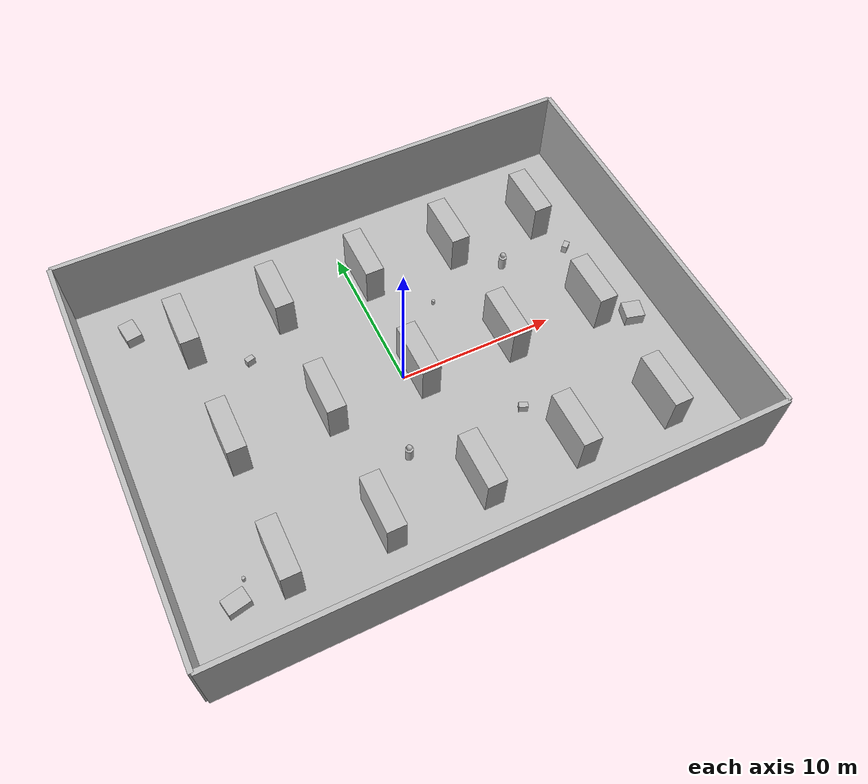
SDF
<sdf version='1.10'>
  <world name='ares_warehouse'>
    <physics name='1ms' type='ignored'>
      <max_step_size>0.001</max_step_size>
      <real_time_factor>1</real_time_factor>
      <real_time_update_rate>1000</real_time_update_rate>
    </physics>
    <plugin name='gz::sim::systems::Physics' filename='gz-sim-physics-system'/>
    <plugin name='gz::sim::systems::UserCommands' filename='gz-sim-user-commands-system'/>
    <plugin name='gz::sim::systems::SceneBroadcaster' filename='gz-sim-scene-broadcaster-system'/>
    <plugin name='gz::sim::systems::Contact' filename='gz-sim-contact-system'/>
    <plugin filename="gz-sim-imu-system" name="gz::sim::systems::Imu"/>
    <plugin filename="gz-sim-imu-system" name="gz::sim::systems::Imu"/>
    <plugin filename="gz-sim-sensors-system" name="gz::sim::systems::Sensors">
    <render_engine>ogre2</render_engine>
    </plugin>

    <gravity>0 0 -9.8000000000000007</gravity>
    <magnetic_field>5.5644999999999998e-06 2.2875799999999999e-05 -4.2388400000000002e-05</magnetic_field>
    <atmosphere type='adiabatic'/>
    <scene>
      <ambient>0.400000006 0.400000006 0.400000006 1</ambient>
      <background>0.699999988 0.699999988 0.699999988 1</background>
      <shadows>true</shadows>
    </scene>
    <light name='sun' type='directional'>
      <pose>0 0 10 0 0 0</pose>
      <cast_shadows>true</cast_shadows>
      <intensity>1</intensity>
      <direction>-0.5 0.10000000000000001 -0.90000000000000002</direction>
      <diffuse>0.800000012 0.800000012 0.800000012 1</diffuse>
      <specular>0.200000003 0.200000003 0.200000003 1</specular>
      <attenuation>
        <range>1000</range>
        <linear>0.01</linear>
        <constant>0.90000000000000002</constant>
        <quadratic>0.001</quadratic>
      </attenuation>
      <spot>
        <inner_angle>0</inner_angle>
        <outer_angle>0</outer_angle>
        <falloff>0</falloff>
      </spot>
    </light>
    <light name="warehouse_light_1" type="point">
      <pose>-10 -6 4.5 0 0 0</pose>
      <cast_shadows>false</cast_shadows>
      <intensity>500</intensity>
      <attenuation><range>18</range><constant>0.7</constant><linear>0.03</linear><quadratic>0.002</quadratic></attenuation>
    </light>
    <light name="warehouse_light_2" type="point">
      <pose>0 -6 4.5 0 0 0</pose>
      <cast_shadows>false</cast_shadows>
      <intensity>500</intensity>
      <attenuation><range>18</range><constant>0.7</constant><linear>0.03</linear><quadratic>0.002</quadratic></attenuation>
    </light>
    <light name="warehouse_light_3" type="point">
      <pose>10 -6 4.5 0 0 0</pose>
      <cast_shadows>false</cast_shadows>
      <intensity>500</intensity>
      <attenuation><range>18</range><constant>0.7</constant><linear>0.03</linear><quadratic>0.002</quadratic></attenuation>
    </light>
    <light name="warehouse_light_4" type="point">
      <pose>-10 4 4.5 0 0 0</pose>
      <cast_shadows>false</cast_shadows>
      <intensity>500</intensity>
      <attenuation><range>18</range><constant>0.7</constant><linear>0.03</linear><quadratic>0.002</quadratic></attenuation>
    </light>
    <light name="warehouse_light_5" type="point">
      <pose>0 4 4.5 0 0 0</pose>
      <cast_shadows>false</cast_shadows>
      <intensity>500</intensity>
      <attenuation><range>18</range><constant>0.7</constant><linear>0.03</linear><quadratic>0.002</quadratic></attenuation>
    </light>
    <light name="warehouse_light_6" type="point">
      <pose>10 4 4.5 0 0 0</pose>
      <cast_shadows>false</cast_shadows>
      <intensity>500</intensity>
      <attenuation><range>18</range><constant>0.7</constant><linear>0.03</linear><quadratic>0.002</quadratic></attenuation>
    </light>

    <model name="warehouse_floor">
      <static>true</static>
      <link name="link">
        <collision name="collision">
          <geometry><box><size>34 26 0.2</size></box></geometry>
          <pose>0 0 -0.1 0 0 0</pose>
        </collision>
        <visual name="visual">
          <geometry><box><size>34 26 0.2</size></box></geometry>
          <pose>0 0 -0.1 0 0 0</pose>
        </visual>
      </link>
    </model>
    <model name="wall_north"><static>true</static><link name="link">
      <collision name="collision"><geometry><box><size>34 0.3 5</size></box></geometry></collision>
      <visual name="visual"><geometry><box><size>34 0.3 5</size></box></geometry></visual>
    </link><pose>0 13 2.5 0 0 0</pose></model>
    <model name="wall_south"><static>true</static><link name="link">
      <collision name="collision"><geometry><box><size>34 0.3 5</size></box></geometry></collision>
      <visual name="visual"><geometry><box><size>34 0.3 5</size></box></geometry></visual>
    </link><pose>0 -13 2.5 0 0 0</pose></model>
    <model name="wall_west"><static>true</static><link name="link">
      <collision name="collision"><geometry><box><size>0.3 26 5</size></box></geometry></collision>
      <visual name="visual"><geometry><box><size>0.3 26 5</size></box></geometry></visual>
    </link><pose>-17 0 2.5 0 0 0</pose></model>
    <model name="wall_east"><static>true</static><link name="link">
      <collision name="collision"><geometry><box><size>0.3 26 5</size></box></geometry></collision>
      <visual name="visual"><geometry><box><size>0.3 26 5</size></box></geometry></visual>
    </link><pose>17 0 2.5 0 0 0</pose></model>
    <model name="rack_1a"><static>true</static><link name="link">
      <collision name="collision"><geometry><box><size>1.2 3.6 2.8</size></box></geometry></collision>
      <visual name="visual"><geometry><box><size>1.2 3.6 2.8</size></box></geometry></visual>
    </link><pose>-11 -8 1.4 0 0 0</pose></model>
    <model name="rack_1b"><static>true</static><link name="link">
      <collision name="collision"><geometry><box><size>1.2 3.6 2.8</size></box></geometry></collision>
      <visual name="visual"><geometry><box><size>1.2 3.6 2.8</size></box></geometry></visual>
    </link><pose>-5 -8 1.4 0 0 0</pose></model>
    <model name="rack_1c"><static>true</static><link name="link">
      <collision name="collision"><geometry><box><size>1.2 3.6 2.8</size></box></geometry></collision>
      <visual name="visual"><geometry><box><size>1.2 3.6 2.8</size></box></geometry></visual>
    </link><pose>1 -8 1.4 0 0 0</pose></model>
    <model name="rack_1d"><static>true</static><link name="link">
      <collision name="collision"><geometry><box><size>1.2 3.6 2.8</size></box></geometry></collision>
      <visual name="visual"><geometry><box><size>1.2 3.6 2.8</size></box></geometry></visual>
    </link><pose>7 -8 1.4 0 0 0</pose></model>
    <model name="rack_1e"><static>true</static><link name="link">
      <collision name="collision"><geometry><box><size>1.2 3.6 2.8</size></box></geometry></collision>
      <visual name="visual"><geometry><box><size>1.2 3.6 2.8</size></box></geometry></visual>
    </link><pose>13 -8 1.4 0 0 0</pose></model>
    <model name="rack_2a"><static>true</static><link name="link">
      <collision name="collision"><geometry><box><size>1.2 3.6 2.8</size></box></geometry></collision>
      <visual name="visual"><geometry><box><size>1.2 3.6 2.8</size></box></geometry></visual>
    </link><pose>-11 0 1.4 0 0 0</pose></model>
    <model name="rack_2b"><static>true</static><link name="link">
      <collision name="collision"><geometry><box><size>1.2 3.6 2.8</size></box></geometry></collision>
      <visual name="visual"><geometry><box><size>1.2 3.6 2.8</size></box></geometry></visual>
    </link><pose>-5 0 1.4 0 0 0</pose></model>
    <model name="rack_2c"><static>true</static><link name="link">
      <collision name="collision"><geometry><box><size>1.2 3.6 2.8</size></box></geometry></collision>
      <visual name="visual"><geometry><box><size>1.2 3.6 2.8</size></box></geometry></visual>
    </link><pose>1 0 1.4 0 0 0</pose></model>
    <model name="rack_2d"><static>true</static><link name="link">
      <collision name="collision"><geometry><box><size>1.2 3.6 2.8</size></box></geometry></collision>
      <visual name="visual"><geometry><box><size>1.2 3.6 2.8</size></box></geometry></visual>
    </link><pose>7 0 1.4 0 0 0</pose></model>
    <model name="rack_2e"><static>true</static><link name="link">
      <collision name="collision"><geometry><box><size>1.2 3.6 2.8</size></box></geometry></collision>
      <visual name="visual"><geometry><box><size>1.2 3.6 2.8</size></box></geometry></visual>
    </link><pose>13 0 1.4 0 0 0</pose></model>
    <model name="rack_3a"><static>true</static><link name="link">
      <collision name="collision"><geometry><box><size>1.2 3.6 2.8</size></box></geometry></collision>
      <visual name="visual"><geometry><box><size>1.2 3.6 2.8</size></box></geometry></visual>
    </link><pose>-11 8 1.4 0 0 0</pose></model>
    <model name="rack_3b"><static>true</static><link name="link">
      <collision name="collision"><geometry><box><size>1.2 3.6 2.8</size></box></geometry></collision>
      <visual name="visual"><geometry><box><size>1.2 3.6 2.8</size></box></geometry></visual>
    </link><pose>-5 8 1.4 0 0 0</pose></model>
    <model name="rack_3c"><static>true</static><link name="link">
      <collision name="collision"><geometry><box><size>1.2 3.6 2.8</size></box></geometry></collision>
      <visual name="visual"><geometry><box><size>1.2 3.6 2.8</size></box></geometry></visual>
    </link><pose>1 8 1.4 0 0 0</pose></model>
    <model name="rack_3d"><static>true</static><link name="link">
      <collision name="collision"><geometry><box><size>1.2 3.6 2.8</size></box></geometry></collision>
      <visual name="visual"><geometry><box><size>1.2 3.6 2.8</size></box></geometry></visual>
    </link><pose>7 8 1.4 0 0 0</pose></model>
    <model name="rack_3e"><static>true</static><link name="link">
      <collision name="collision"><geometry><box><size>1.2 3.6 2.8</size></box></geometry></collision>
      <visual name="visual"><geometry><box><size>1.2 3.6 2.8</size></box></geometry></visual>
    </link><pose>13 8 1.4 0 0 0</pose></model>
    <model name="pallet_1"><static>true</static><link name="link">
      <collision name="collision"><geometry><box><size>1.4 1.0 0.7</size></box></geometry></collision>
      <visual name="visual"><geometry><box><size>1.4 1.0 0.7</size></box></geometry></visual>
    </link><pose>-14 -9 0.35 0 0 0.2</pose></model>
    <model name="pallet_2"><static>true</static><link name="link">
      <collision name="collision"><geometry><box><size>1.2 1.2 0.8</size></box></geometry></collision>
      <visual name="visual"><geometry><box><size>1.2 1.2 0.8</size></box></geometry></visual>
    </link><pose>15 -2 0.4 0 0 -0.25</pose></model>
    <model name="pallet_3"><static>true</static><link name="link">
      <collision name="collision"><geometry><box><size>1.0 1.4 0.75</size></box></geometry></collision>
      <visual name="visual"><geometry><box><size>1.0 1.4 0.75</size></box></geometry></visual>
    </link><pose>-14 10 0.375 0 0 0.15</pose></model>
    <model name="bottle_target_1">
      <static>true</static><link name="link">
        <visual name="visual"><geometry><cylinder><radius>0.10</radius><length>0.35</length></cylinder></geometry></visual>
        <collision name="collision"><geometry><cylinder><radius>0.10</radius><length>0.35</length></cylinder></geometry></collision>
      </link><pose>-13.2 -8.0 0.55 0 0 0</pose>
    </model>
    <model name="bottle_target_2">
      <static>true</static><link name="link">
        <visual name="visual"><geometry><cylinder><radius>0.10</radius><length>0.35</length></cylinder></geometry></visual>
        <collision name="collision"><geometry><cylinder><radius>0.10</radius><length>0.35</length></cylinder></geometry></collision>
      </link><pose>4.0 4.0 0.55 0 0 0</pose>
    </model>
    <model name="bottle_target_3">
      <static>true</static><link name="link">
        <visual name="visual"><geometry><cylinder><radius>0.10</radius><length>0.35</length></cylinder></geometry></visual>
        <collision name="collision"><geometry><cylinder><radius>0.10</radius><length>0.35</length></cylinder></geometry></collision>
      </link><pose>12.5 9.5 0.55 0 0 0</pose>
    </model>
    <model name="person_target_1">
      <static>true</static>
      <link name="torso">
        <visual name="visual"><geometry><cylinder><radius>0.24</radius><length>0.95</length></cylinder></geometry></visual>
        <collision name="collision"><geometry><cylinder><radius>0.24</radius><length>0.95</length></cylinder></geometry></collision>
      </link>
      <link name="head">
        <pose>0 0 0.65 0 0 0</pose>
        <visual name="visual"><geometry><sphere><radius>0.18</radius></sphere></geometry></visual>
        <collision name="collision"><geometry><sphere><radius>0.18</radius></sphere></geometry></collision>
      </link>
      <pose>-2.0 -5.0 0.55 0 0 0.5</pose>
    </model>
    <model name="person_target_2">
      <static>true</static>
      <link name="torso">
        <visual name="visual"><geometry><cylinder><radius>0.24</radius><length>0.95</length></cylinder></geometry></visual>
        <collision name="collision"><geometry><cylinder><radius>0.24</radius><length>0.95</length></cylinder></geometry></collision>
      </link>
      <link name="head">
        <pose>0 0 0.65 0 0 0</pose>
        <visual name="visual"><geometry><sphere><radius>0.18</radius></sphere></geometry></visual>
        <collision name="collision"><geometry><sphere><radius>0.18</radius></sphere></geometry></collision>
      </link>
      <pose>9.5 5.0 0.55 0 0 -0.7</pose>
    </model>
    <model name="bag_target_1">
      <static>true</static><link name="link">
        <visual name="visual"><geometry><box><size>0.55 0.35 0.55</size></box></geometry></visual>
        <collision name="collision"><geometry><box><size>0.55 0.35 0.55</size></box></geometry></collision>
      </link><pose>-8.0 5.0 0.275 0 0 0.25</pose>
    </model>
    <model name="bag_target_2">
      <static>true</static><link name="link">
        <visual name="visual"><geometry><box><size>0.55 0.35 0.55</size></box></geometry></visual>
        <collision name="collision"><geometry><box><size>0.55 0.35 0.55</size></box></geometry></collision>
      </link><pose>5.5 -5.0 0.275 0 0 -0.4</pose>
    </model>
    <model name="bag_target_3">
      <static>true</static><link name="link">
        <visual name="visual"><geometry><box><size>0.55 0.35 0.55</size></box></geometry></visual>
        <collision name="collision"><geometry><box><size>0.55 0.35 0.55</size></box></geometry></collision>
      </link><pose>14.0 4.5 0.275 0 0 0.7</pose>
    </model>

  </world>
</sdf>
